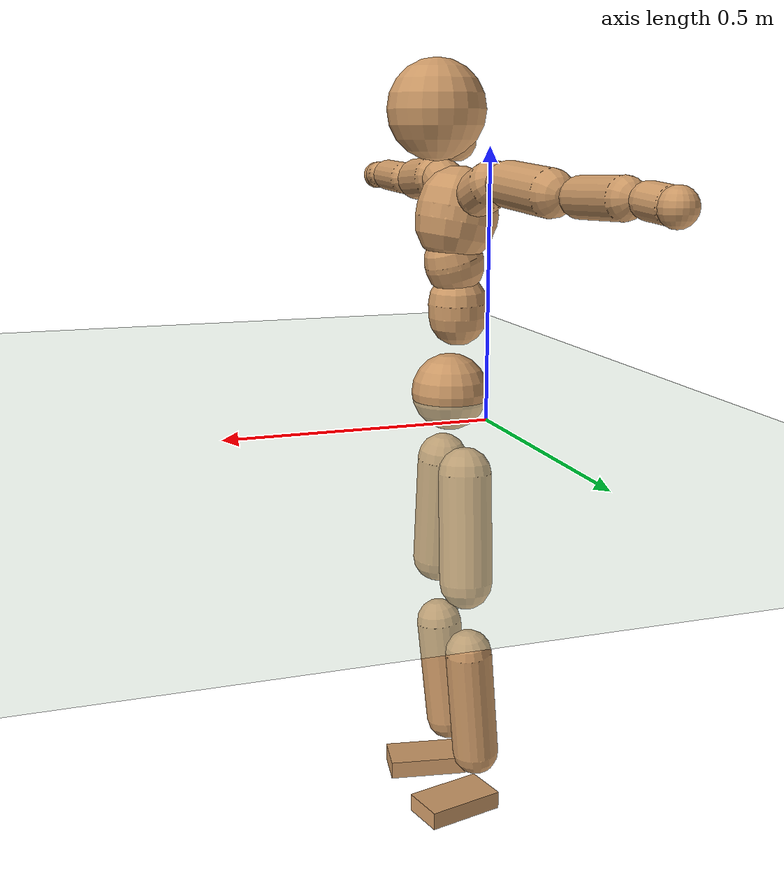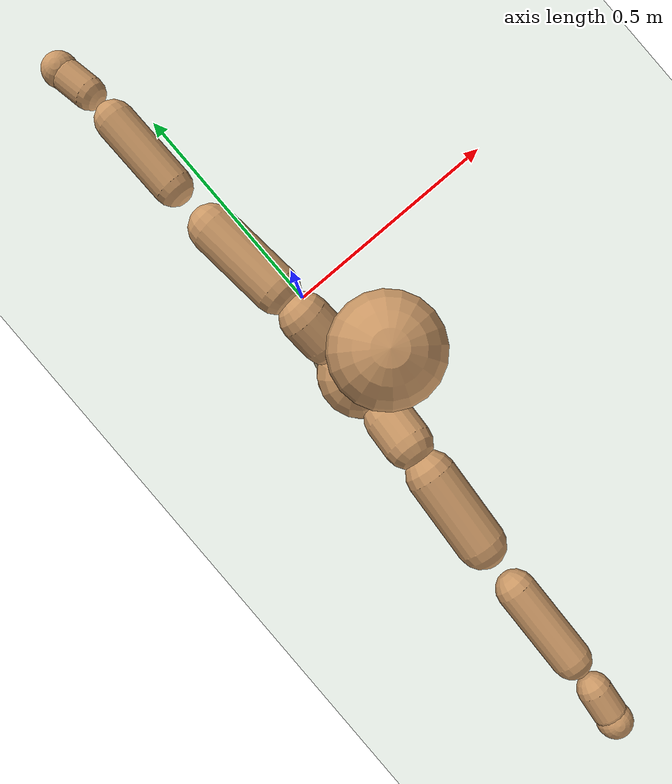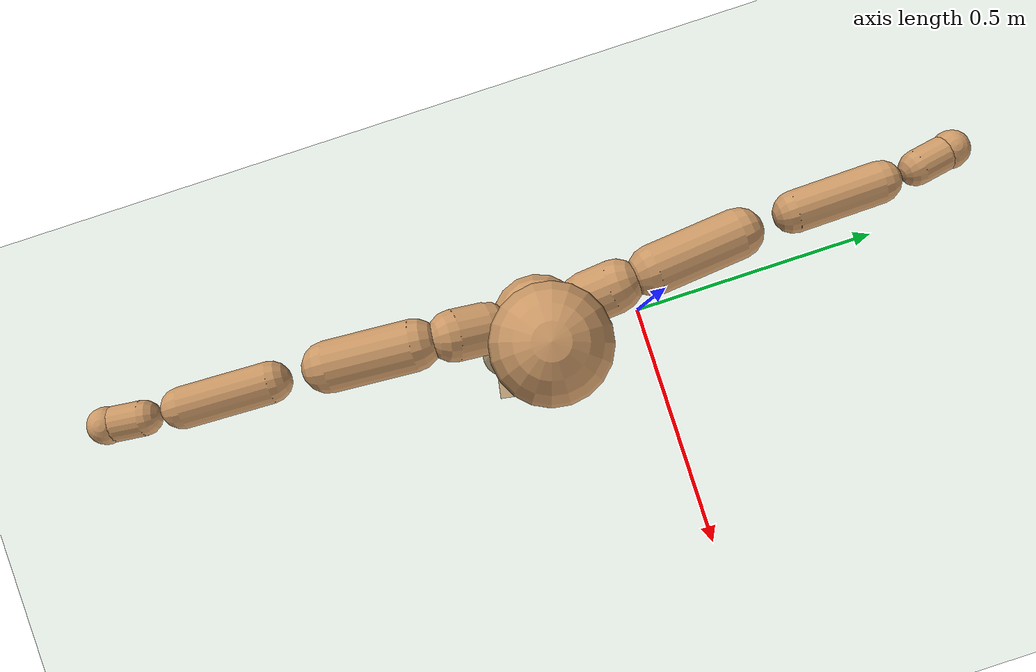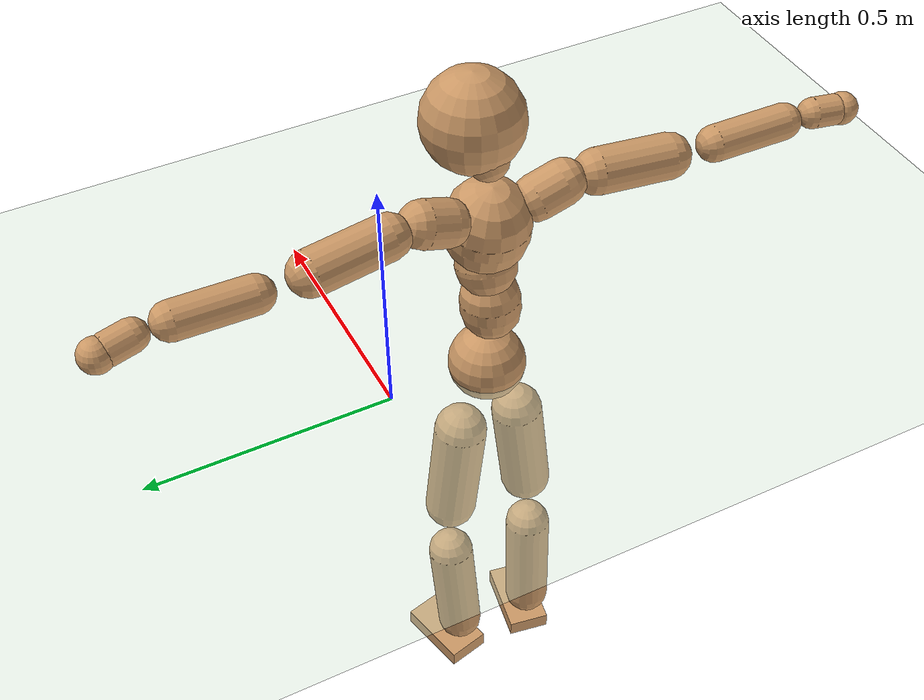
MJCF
<mujoco model="humanoid">
  <compiler coordinate="local"/>
  <default>
    <joint damping="0.0" armature="0.01" stiffness="0.0" limited="true"/>
    <geom conaffinity="1" condim="3" contype="7" margin="0.001" rgba="0.8 0.6 .4 1"/>
  </default>
  <asset>
    <texture type="skybox" builtin="gradient" rgb1=".4 .5 .6" rgb2="0 0 0" width="100" height="100"/>
    <texture builtin="flat" height="1278" mark="cross" markrgb="1 1 1" name="texgeom" random="0.01" rgb1="0.8 0.6 0.4" rgb2="0.8 0.6 0.4" type="cube" width="127"/>
    <texture builtin="checker" height="100" name="texplane" rgb1="0 0 0" rgb2="0.8 0.8 0.8" type="2d" width="100"/>
    <material name="MatPlane" reflectance="0.5" shininess="1" specular="1" texrepeat="60 60" texture="texplane"/>
    <material name="geom" texture="texgeom" texuniform="true"/>
  </asset>
  <worldbody>
    <light cutoff="100" diffuse="1 1 1" dir="-0 0 -1.3" directional="true" exponent="1" pos="0 0 1.3" specular=".1 .1 .1"/>
    <geom conaffinity="1" condim="3" name="floor" pos="0 0 0" rgba="0.8 0.9 0.8 1" size="100 100 .2" type="plane" material="MatPlane"/>
    <body name="Pelvis" pos="-0.0038 -0.207 0.014">
      <freejoint name="Pelvis"/>
      <geom type="sphere" contype="1" conaffinity="1" density="500" size="0.0780" pos="0.0000 0.0000 0.0000" name="Pelvis"/>
      <body name="L_Hip" pos="-0.0111 0.0569 -0.0825">
        <joint name="L_Hip_x" type="hinge" pos="0 0 0" axis="1 0 0" stiffness="800" damping="80" armature="0.02" range="-180.0000 180.0000"/>
        <joint name="L_Hip_y" type="hinge" pos="0 0 0" axis="0 1 0" stiffness="800" damping="80" armature="0.02" range="-180.0000 180.0000"/>
        <joint name="L_Hip_z" type="hinge" pos="0 0 0" axis="0 0 1" stiffness="800" damping="80" armature="0.02" range="-180.0000 180.0000"/>
        <geom type="capsule" contype="1" conaffinity="1" density="500" fromto="0.0015 0.0083 -0.0752 0.0061 0.0333 -0.3010" size="0.054" name="L_Hip"/>
        <body name="L_Knee" pos="0.0077 0.0416 -0.3762">
          <joint name="L_Knee_x" type="hinge" pos="0 0 0" axis="1 0 0" stiffness="800" damping="80" armature="0.02" range="-180.0000 180.0000"/>
          <joint name="L_Knee_y" type="hinge" pos="0 0 0" axis="0 1 0" stiffness="800" damping="80" armature="0.02" range="-180.0000 180.0000"/>
          <joint name="L_Knee_z" type="hinge" pos="0 0 0" axis="0 0 1" stiffness="800" damping="80" armature="0.02" range="-180.0000 180.0000"/>
          <geom type="capsule" contype="1" conaffinity="1" density="500" fromto="-0.0073 -0.0026 -0.0779 -0.0291 -0.0104 -0.3114" size="0.0484" name="L_Knee"/>
          <body name="L_Ankle" pos="-0.0363 -0.013 -0.3893">
            <joint name="L_Ankle_x" type="hinge" pos="0 0 0" axis="1 0 0" stiffness="800" damping="80" armature="0.02" range="-180.0000 180.0000"/>
            <joint name="L_Ankle_y" type="hinge" pos="0 0 0" axis="0 1 0" stiffness="800" damping="80" armature="0.02" range="-180.0000 180.0000"/>
            <joint name="L_Ankle_z" type="hinge" pos="0 0 0" axis="0 0 1" stiffness="800" damping="80" armature="0.02" range="-180.0000 180.0000"/>
            <geom type="box" contype="1" conaffinity="1" density="500" pos="0.0577 0.0138 -0.0271" size="0.0819 0.0459 0.0186" quat="0.9931 0.0000 0.0000 0.1170" name="L_Ankle"/>
            <body name="L_Toe" pos="0.1154 0.0276 -0.0543">
              <joint name="L_Toe_x" type="hinge" pos="0 0 0" axis="1 0 0" stiffness="500" damping="50" armature="0.02" range="-180.0000 180.0000"/>
              <joint name="L_Toe_y" type="hinge" pos="0 0 0" axis="0 1 0" stiffness="500" damping="50" armature="0.02" range="-180.0000 180.0000"/>
              <joint name="L_Toe_z" type="hinge" pos="0 0 0" axis="0 0 1" stiffness="500" damping="50" armature="0.02" range="-180.0000 180.0000"/>
              <geom type="box" contype="1" conaffinity="1" density="500" pos="0.0000 0.0000 0.0283" size="0.0009 0.0022 0.001" quat="0.9924 0.0000 0.0000 0.1231" name="L_Toe"/>
            </body>
          </body>
        </body>
      </body>
      <body name="R_Hip" pos="-0.0096 -0.0555 -0.0808">
        <joint name="R_Hip_x" type="hinge" pos="0 0 0" axis="1 0 0" stiffness="800" damping="80" armature="0.02" range="-180.0000 180.0000"/>
        <joint name="R_Hip_y" type="hinge" pos="0 0 0" axis="0 1 0" stiffness="800" damping="80" armature="0.02" range="-180.0000 180.0000"/>
        <joint name="R_Hip_z" type="hinge" pos="0 0 0" axis="0 0 1" stiffness="800" damping="80" armature="0.02" range="-180.0000 180.0000"/>
        <geom type="capsule" contype="1" conaffinity="1" density="500" fromto="0.0004 -0.0086 -0.0764 0.0015 -0.0344 -0.3057" size="0.0528" name="R_Hip"/>
        <body name="R_Knee" pos="0.0018 -0.043 -0.3821">
          <joint name="R_Knee_x" type="hinge" pos="0 0 0" axis="1 0 0" stiffness="800" damping="80" armature="0.02" range="-180.0000 180.0000"/>
          <joint name="R_Knee_y" type="hinge" pos="0 0 0" axis="0 1 0" stiffness="800" damping="80" armature="0.02" range="-180.0000 180.0000"/>
          <joint name="R_Knee_z" type="hinge" pos="0 0 0" axis="0 0 1" stiffness="800" damping="80" armature="0.02" range="-180.0000 180.0000"/>
          <geom type="capsule" contype="1" conaffinity="1" density="500" fromto="-0.0070 0.0030 -0.0776 -0.0281 0.0122 -0.3103" size="0.0488" name="R_Knee"/>
          <body name="R_Ankle" pos="-0.0351 0.0152 -0.3878">
            <joint name="R_Ankle_x" type="hinge" pos="0 0 0" axis="1 0 0" stiffness="800" damping="80" armature="0.02" range="-180.0000 180.0000"/>
            <joint name="R_Ankle_y" type="hinge" pos="0 0 0" axis="0 1 0" stiffness="800" damping="80" armature="0.02" range="-180.0000 180.0000"/>
            <joint name="R_Ankle_z" type="hinge" pos="0 0 0" axis="0 0 1" stiffness="800" damping="80" armature="0.02" range="-180.0000 180.0000"/>
            <geom type="box" contype="1" conaffinity="1" density="500" pos="0.0595 -0.0102 -0.0230" size="0.0839 0.0453 0.0188" quat="0.9964 0.0000 0.0000 -0.0847" name="R_Ankle"/>
            <body name="R_Toe" pos="0.119 -0.0204 -0.046">
              <joint name="R_Toe_x" type="hinge" pos="0 0 0" axis="1 0 0" stiffness="500" damping="50" armature="0.02" range="-180.0000 180.0000"/>
              <joint name="R_Toe_y" type="hinge" pos="0 0 0" axis="0 1 0" stiffness="500" damping="50" armature="0.02" range="-180.0000 180.0000"/>
              <joint name="R_Toe_z" type="hinge" pos="0 0 0" axis="0 0 1" stiffness="500" damping="50" armature="0.02" range="-180.0000 180.0000"/>
              <geom type="box" contype="1" conaffinity="1" density="500" pos="0.0000 0.0000 0.0244" size="0.0008 0.0022 0.001" quat="0.9972 0.0000 0.0000 -0.0753" name="R_Toe"/>
            </body>
          </body>
        </body>
      </body>
      <body name="Torso" pos="-0.0172 -0.0029 0.0987">
        <joint name="Torso_x" type="hinge" pos="0 0 0" axis="1 0 0" stiffness="1000" damping="100" armature="0.02" range="-180.0000 180.0000"/>
        <joint name="Torso_y" type="hinge" pos="0 0 0" axis="0 1 0" stiffness="1000" damping="100" armature="0.02" range="-180.0000 180.0000"/>
        <joint name="Torso_z" type="hinge" pos="0 0 0" axis="0 0 1" stiffness="1000" damping="100" armature="0.02" range="-180.0000 180.0000"/>
        <geom type="capsule" contype="1" conaffinity="1" density="500" fromto="0.0026 0.0040 0.0821 0.0017 0.0027 0.0547" size="0.0591" name="Torso"/>
        <body name="Spine" pos="0.0043 0.0067 0.1368">
          <joint name="Spine_x" type="hinge" pos="0 0 0" axis="1 0 0" stiffness="1000" damping="100" armature="0.02" range="-180.0000 180.0000"/>
          <joint name="Spine_y" type="hinge" pos="0 0 0" axis="0 1 0" stiffness="1000" damping="100" armature="0.02" range="-180.0000 180.0000"/>
          <joint name="Spine_z" type="hinge" pos="0 0 0" axis="0 0 1" stiffness="1000" damping="100" armature="0.02" range="-180.0000 180.0000"/>
          <geom type="capsule" contype="1" conaffinity="1" density="500" fromto="0.0093 0.0009 0.0303 0.0062 0.0006 0.0202" size="0.0594" name="Spine"/>
          <body name="Chest" pos="0.0156 0.0016 0.0505">
            <joint name="Chest_x" type="hinge" pos="0 0 0" axis="1 0 0" stiffness="1000" damping="100" armature="0.02" range="-180.0000 180.0000"/>
            <joint name="Chest_y" type="hinge" pos="0 0 0" axis="0 1 0" stiffness="1000" damping="100" armature="0.02" range="-180.0000 180.0000"/>
            <joint name="Chest_z" type="hinge" pos="0 0 0" axis="0 0 1" stiffness="1000" damping="100" armature="0.02" range="-180.0000 180.0000"/>
            <geom type="capsule" contype="1" conaffinity="1" density="500" fromto="-0.0156 -0.0017 0.0815 -0.0104 -0.0012 0.0543" size="0.0814" name="Chest"/>
            <body name="Neck" pos="-0.0215 -0.0049 0.195">
              <joint name="Neck_x" type="hinge" pos="0 0 0" axis="1 0 0" stiffness="500" damping="50" armature="0.02" range="-180.0000 180.0000"/>
              <joint name="Neck_y" type="hinge" pos="0 0 0" axis="0 1 0" stiffness="500" damping="50" armature="0.02" range="-180.0000 180.0000"/>
              <joint name="Neck_z" type="hinge" pos="0 0 0" axis="0 0 1" stiffness="500" damping="50" armature="0.02" range="-180.0000 180.0000"/>
              <geom type="capsule" contype="1" conaffinity="1" density="500" fromto="0.0107 0.0017 0.0144 0.0429 0.0066 0.0577" size="0.0396" name="Neck"/>
              <body name="Head" pos="0.0536 0.0083 0.0721">
                <joint name="Head_x" type="hinge" pos="0 0 0" axis="1 0 0" stiffness="500" damping="50" armature="0.02" range="-180.0000 180.0000"/>
                <joint name="Head_y" type="hinge" pos="0 0 0" axis="0 1 0" stiffness="500" damping="50" armature="0.02" range="-180.0000 180.0000"/>
                <joint name="Head_z" type="hinge" pos="0 0 0" axis="0 0 1" stiffness="500" damping="50" armature="0.02" range="-180.0000 180.0000"/>
                <geom type="sphere" contype="1" conaffinity="1" density="500" size="0.0961" pos="0.0000 0.0000 0.0000" name="Head"/>
              </body>
            </body>
            <body name="L_Thorax" pos="-0.0259 0.0676 0.1079">
              <joint name="L_Thorax_x" type="hinge" pos="0 0 0" axis="1 0 0" stiffness="500" damping="50" armature="0.02" range="-180.0000 180.0000"/>
              <joint name="L_Thorax_y" type="hinge" pos="0 0 0" axis="0 1 0" stiffness="500" damping="50" armature="0.02" range="-180.0000 180.0000"/>
              <joint name="L_Thorax_z" type="hinge" pos="0 0 0" axis="0 0 1" stiffness="500" damping="50" armature="0.02" range="-180.0000 180.0000"/>
              <geom type="capsule" contype="1" conaffinity="1" density="500" fromto="-0.0010 0.0167 0.0059 -0.0040 0.0668 0.0235" size="0.0451" name="L_Thorax"/>
              <body name="L_Shoulder" pos="-0.005 0.0835 0.0294">
                <joint name="L_Shoulder_x" type="hinge" pos="0 0 0" axis="1 0 0" stiffness="500" damping="50" armature="0.02" range="-720.0000 720.0000"/>
                <joint name="L_Shoulder_y" type="hinge" pos="0 0 0" axis="0 1 0" stiffness="500" damping="50" armature="0.02" range="-720.0000 720.0000"/>
                <joint name="L_Shoulder_z" type="hinge" pos="0 0 0" axis="0 0 1" stiffness="500" damping="50" armature="0.02" range="-720.0000 720.0000"/>
                <geom type="capsule" contype="1" conaffinity="1" density="500" fromto="-0.0048 0.0502 -0.0032 -0.0193 0.2009 -0.0130" size="0.043" name="L_Shoulder"/>
                <body name="L_Elbow" pos="-0.0242 0.2512 -0.0162">
                  <joint name="L_Elbow_x" type="hinge" pos="0 0 0" axis="1 0 0" stiffness="500" damping="50" armature="0.02" range="-720.0000 720.0000"/>
                  <joint name="L_Elbow_y" type="hinge" pos="0 0 0" axis="0 1 0" stiffness="500" damping="50" armature="0.02" range="-720.0000 720.0000"/>
                  <joint name="L_Elbow_z" type="hinge" pos="0 0 0" axis="0 0 1" stiffness="500" damping="50" armature="0.02" range="-720.0000 720.0000"/>
                  <geom type="capsule" contype="1" conaffinity="1" density="500" fromto="-0.0007 0.0490 0.0017 -0.0030 0.1959 0.0069" size="0.0354" name="L_Elbow"/>
                  <body name="L_Wrist" pos="-0.0037 0.2449 0.0086">
                    <joint name="L_Wrist_x" type="hinge" pos="0 0 0" axis="1 0 0" stiffness="300" damping="30" armature="0.02" range="-180.0000 180.0000"/>
                    <joint name="L_Wrist_y" type="hinge" pos="0 0 0" axis="0 1 0" stiffness="300" damping="30" armature="0.02" range="-180.0000 180.0000"/>
                    <joint name="L_Wrist_z" type="hinge" pos="0 0 0" axis="0 0 1" stiffness="300" damping="30" armature="0.02" range="-180.0000 180.0000"/>
                    <geom type="capsule" contype="1" conaffinity="1" density="500" fromto="-0.0029 0.0160 -0.0016 -0.0117 0.0639 -0.0062" size="0.0297" name="L_Wrist"/>
                    <body name="L_Hand" pos="-0.0147 0.0799 -0.0078">
                      <joint name="L_Hand_x" type="hinge" pos="0 0 0" axis="1 0 0" stiffness="300" damping="30" armature="0.02" range="-180.0000 180.0000"/>
                      <joint name="L_Hand_y" type="hinge" pos="0 0 0" axis="0 1 0" stiffness="300" damping="30" armature="0.02" range="-180.0000 180.0000"/>
                      <joint name="L_Hand_z" type="hinge" pos="0 0 0" axis="0 0 1" stiffness="300" damping="30" armature="0.02" range="-180.0000 180.0000"/>
                      <geom type="sphere" contype="1" conaffinity="1" density="500" size="0.0319" pos="0.0000 0.0000 0.0000" name="L_Hand"/>
                    </body>
                  </body>
                </body>
              </body>
            </body>
            <body name="R_Thorax" pos="-0.0304 -0.0715 0.1046">
              <joint name="R_Thorax_x" type="hinge" pos="0 0 0" axis="1 0 0" stiffness="500" damping="50" armature="0.02" range="-180.0000 180.0000"/>
              <joint name="R_Thorax_y" type="hinge" pos="0 0 0" axis="0 1 0" stiffness="500" damping="50" armature="0.02" range="-180.0000 180.0000"/>
              <joint name="R_Thorax_z" type="hinge" pos="0 0 0" axis="0 0 1" stiffness="500" damping="50" armature="0.02" range="-180.0000 180.0000"/>
              <geom type="capsule" contype="1" conaffinity="1" density="500" fromto="-0.0013 -0.0176 0.0061 -0.0050 -0.0704 0.0246" size="0.0441" name="R_Thorax"/>
              <body name="R_Shoulder" pos="-0.0063 -0.0879 0.0307">
                <joint name="R_Shoulder_x" type="hinge" pos="0 0 0" axis="1 0 0" stiffness="500" damping="50" armature="0.02" range="-720.0000 720.0000"/>
                <joint name="R_Shoulder_y" type="hinge" pos="0 0 0" axis="0 1 0" stiffness="500" damping="50" armature="0.02" range="-720.0000 720.0000"/>
                <joint name="R_Shoulder_z" type="hinge" pos="0 0 0" axis="0 0 1" stiffness="500" damping="50" armature="0.02" range="-720.0000 720.0000"/>
                <geom type="capsule" contype="1" conaffinity="1" density="500" fromto="-0.0036 -0.0484 -0.0028 -0.0144 -0.1936 -0.0113" size="0.0441" name="R_Shoulder"/>
                <body name="R_Elbow" pos="-0.0179 -0.242 -0.0141">
                  <joint name="R_Elbow_x" type="hinge" pos="0 0 0" axis="1 0 0" stiffness="500" damping="50" armature="0.02" range="-720.0000 720.0000"/>
                  <joint name="R_Elbow_y" type="hinge" pos="0 0 0" axis="0 1 0" stiffness="500" damping="50" armature="0.02" range="-720.0000 720.0000"/>
                  <joint name="R_Elbow_z" type="hinge" pos="0 0 0" axis="0 0 1" stiffness="500" damping="50" armature="0.02" range="-720.0000 720.0000"/>
                  <geom type="capsule" contype="1" conaffinity="1" density="500" fromto="-0.0017 -0.0498 0.0010 -0.0067 -0.1992 0.0041" size="0.0353" name="R_Elbow"/>
                  <body name="R_Wrist" pos="-0.0083 -0.2491 0.0052">
                    <joint name="R_Wrist_x" type="hinge" pos="0 0 0" axis="1 0 0" stiffness="300" damping="30" armature="0.02" range="-180.0000 180.0000"/>
                    <joint name="R_Wrist_y" type="hinge" pos="0 0 0" axis="0 1 0" stiffness="300" damping="30" armature="0.02" range="-180.0000 180.0000"/>
                    <joint name="R_Wrist_z" type="hinge" pos="0 0 0" axis="0 0 1" stiffness="300" damping="30" armature="0.02" range="-180.0000 180.0000"/>
                    <geom type="capsule" contype="1" conaffinity="1" density="500" fromto="-0.0019 -0.0158 -0.0011 -0.0075 -0.0633 -0.0044" size="0.03" name="R_Wrist"/>
                    <body name="R_Hand" pos="-0.0094 -0.0791 -0.0056">
                      <joint name="R_Hand_x" type="hinge" pos="0 0 0" axis="1 0 0" stiffness="300" damping="30" armature="0.02" range="-180.0000 180.0000"/>
                      <joint name="R_Hand_y" type="hinge" pos="0 0 0" axis="0 1 0" stiffness="300" damping="30" armature="0.02" range="-180.0000 180.0000"/>
                      <joint name="R_Hand_z" type="hinge" pos="0 0 0" axis="0 0 1" stiffness="300" damping="30" armature="0.02" range="-180.0000 180.0000"/>
                      <geom type="sphere" contype="1" conaffinity="1" density="500" size="0.0317" pos="0.0000 0.0000 0.0000" name="R_Hand"/>
                    </body>
                  </body>
                </body>
              </body>
            </body>
          </body>
        </body>
      </body>
    </body>
  </worldbody>
  <actuator>
    <motor name="L_Hip_x" joint="L_Hip_x" gear="500"/>
    <motor name="L_Hip_y" joint="L_Hip_y" gear="500"/>
    <motor name="L_Hip_z" joint="L_Hip_z" gear="500"/>
    <motor name="L_Knee_x" joint="L_Knee_x" gear="500"/>
    <motor name="L_Knee_y" joint="L_Knee_y" gear="500"/>
    <motor name="L_Knee_z" joint="L_Knee_z" gear="500"/>
    <motor name="L_Ankle_x" joint="L_Ankle_x" gear="500"/>
    <motor name="L_Ankle_y" joint="L_Ankle_y" gear="500"/>
    <motor name="L_Ankle_z" joint="L_Ankle_z" gear="500"/>
    <motor name="L_Toe_x" joint="L_Toe_x" gear="500"/>
    <motor name="L_Toe_y" joint="L_Toe_y" gear="500"/>
    <motor name="L_Toe_z" joint="L_Toe_z" gear="500"/>
    <motor name="R_Hip_x" joint="R_Hip_x" gear="500"/>
    <motor name="R_Hip_y" joint="R_Hip_y" gear="500"/>
    <motor name="R_Hip_z" joint="R_Hip_z" gear="500"/>
    <motor name="R_Knee_x" joint="R_Knee_x" gear="500"/>
    <motor name="R_Knee_y" joint="R_Knee_y" gear="500"/>
    <motor name="R_Knee_z" joint="R_Knee_z" gear="500"/>
    <motor name="R_Ankle_x" joint="R_Ankle_x" gear="500"/>
    <motor name="R_Ankle_y" joint="R_Ankle_y" gear="500"/>
    <motor name="R_Ankle_z" joint="R_Ankle_z" gear="500"/>
    <motor name="R_Toe_x" joint="R_Toe_x" gear="500"/>
    <motor name="R_Toe_y" joint="R_Toe_y" gear="500"/>
    <motor name="R_Toe_z" joint="R_Toe_z" gear="500"/>
    <motor name="Torso_x" joint="Torso_x" gear="500"/>
    <motor name="Torso_y" joint="Torso_y" gear="500"/>
    <motor name="Torso_z" joint="Torso_z" gear="500"/>
    <motor name="Spine_x" joint="Spine_x" gear="500"/>
    <motor name="Spine_y" joint="Spine_y" gear="500"/>
    <motor name="Spine_z" joint="Spine_z" gear="500"/>
    <motor name="Chest_x" joint="Chest_x" gear="500"/>
    <motor name="Chest_y" joint="Chest_y" gear="500"/>
    <motor name="Chest_z" joint="Chest_z" gear="500"/>
    <motor name="Neck_x" joint="Neck_x" gear="500"/>
    <motor name="Neck_y" joint="Neck_y" gear="500"/>
    <motor name="Neck_z" joint="Neck_z" gear="500"/>
    <motor name="Head_x" joint="Head_x" gear="500"/>
    <motor name="Head_y" joint="Head_y" gear="500"/>
    <motor name="Head_z" joint="Head_z" gear="500"/>
    <motor name="L_Thorax_x" joint="L_Thorax_x" gear="500"/>
    <motor name="L_Thorax_y" joint="L_Thorax_y" gear="500"/>
    <motor name="L_Thorax_z" joint="L_Thorax_z" gear="500"/>
    <motor name="L_Shoulder_x" joint="L_Shoulder_x" gear="500"/>
    <motor name="L_Shoulder_y" joint="L_Shoulder_y" gear="500"/>
    <motor name="L_Shoulder_z" joint="L_Shoulder_z" gear="500"/>
    <motor name="L_Elbow_x" joint="L_Elbow_x" gear="500"/>
    <motor name="L_Elbow_y" joint="L_Elbow_y" gear="500"/>
    <motor name="L_Elbow_z" joint="L_Elbow_z" gear="500"/>
    <motor name="L_Wrist_x" joint="L_Wrist_x" gear="500"/>
    <motor name="L_Wrist_y" joint="L_Wrist_y" gear="500"/>
    <motor name="L_Wrist_z" joint="L_Wrist_z" gear="500"/>
    <motor name="L_Hand_x" joint="L_Hand_x" gear="500"/>
    <motor name="L_Hand_y" joint="L_Hand_y" gear="500"/>
    <motor name="L_Hand_z" joint="L_Hand_z" gear="500"/>
    <motor name="R_Thorax_x" joint="R_Thorax_x" gear="500"/>
    <motor name="R_Thorax_y" joint="R_Thorax_y" gear="500"/>
    <motor name="R_Thorax_z" joint="R_Thorax_z" gear="500"/>
    <motor name="R_Shoulder_x" joint="R_Shoulder_x" gear="500"/>
    <motor name="R_Shoulder_y" joint="R_Shoulder_y" gear="500"/>
    <motor name="R_Shoulder_z" joint="R_Shoulder_z" gear="500"/>
    <motor name="R_Elbow_x" joint="R_Elbow_x" gear="500"/>
    <motor name="R_Elbow_y" joint="R_Elbow_y" gear="500"/>
    <motor name="R_Elbow_z" joint="R_Elbow_z" gear="500"/>
    <motor name="R_Wrist_x" joint="R_Wrist_x" gear="500"/>
    <motor name="R_Wrist_y" joint="R_Wrist_y" gear="500"/>
    <motor name="R_Wrist_z" joint="R_Wrist_z" gear="500"/>
    <motor name="R_Hand_x" joint="R_Hand_x" gear="500"/>
    <motor name="R_Hand_y" joint="R_Hand_y" gear="500"/>
    <motor name="R_Hand_z" joint="R_Hand_z" gear="500"/>
  </actuator>
  <contact>
    <exclude body1="Torso" body2="Chest"/>
    <exclude body1="Head" body2="Chest"/>
    <exclude body1="R_Knee" body2="R_Toe"/>
    <exclude body1="R_Knee" body2="L_Ankle"/>
    <exclude body1="R_Knee" body2="L_Toe"/>
    <exclude body1="L_Knee" body2="L_Toe"/>
    <exclude body1="L_Knee" body2="R_Ankle"/>
    <exclude body1="L_Knee" body2="R_Toe"/>
    <exclude body1="L_Shoulder" body2="Chest"/>
    <exclude body1="R_Shoulder" body2="Chest"/>
  </contact>
  <sensor/>
  <size njmax="700" nconmax="700"/>
</mujoco>
